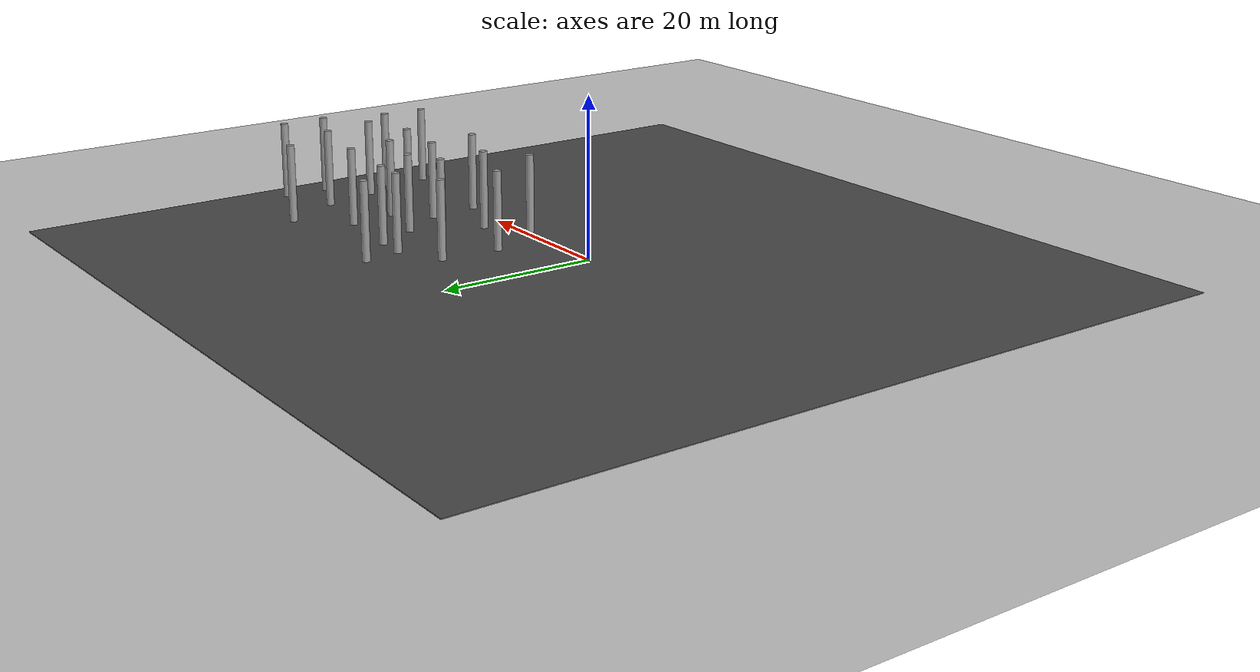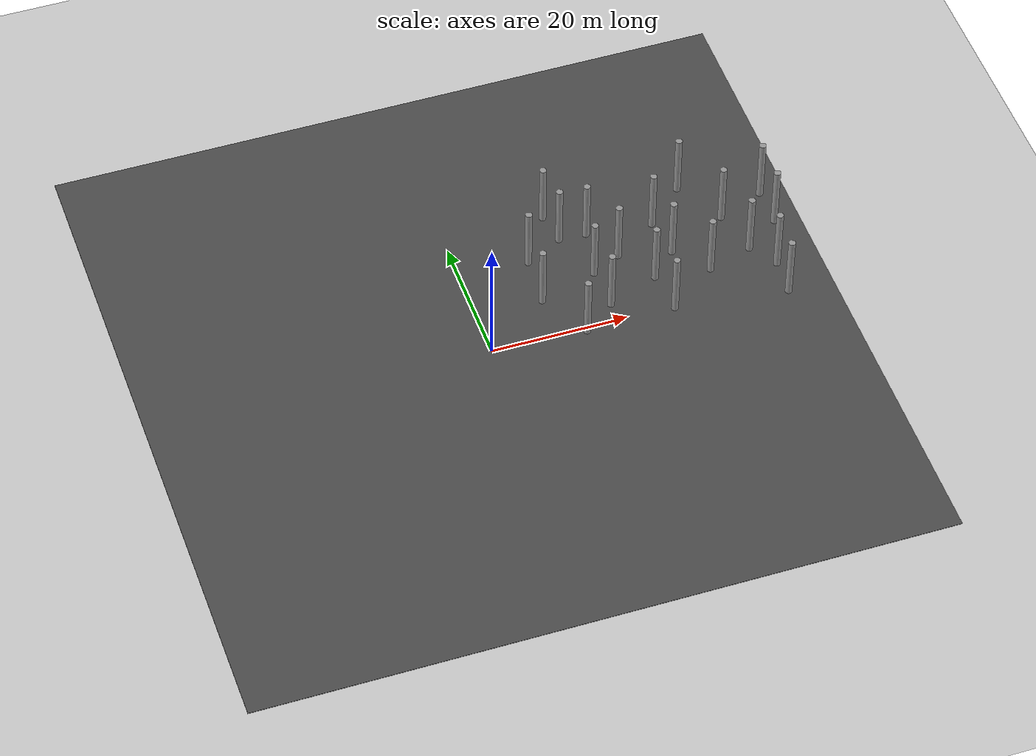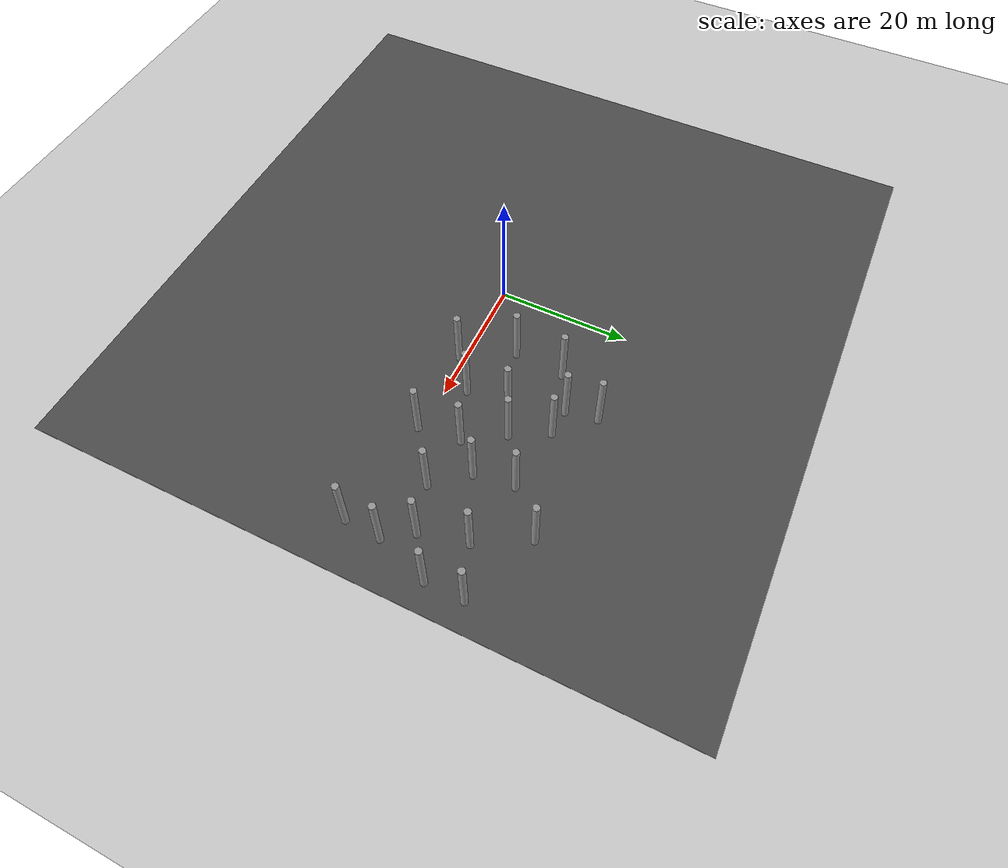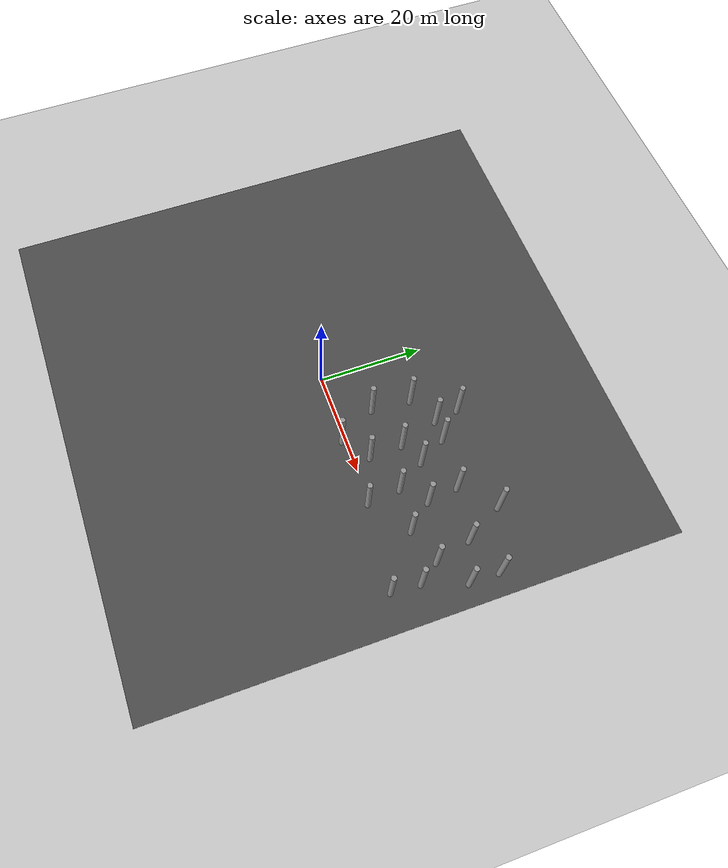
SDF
<sdf version="1.6">
 <world name="default">
  <model name="ground_plane">
   <static>1</static>
   <link name="link">
    <collision name="collision">
     <geometry><plane><normal>0 0 1</normal><size>100 100</size></plane></geometry>
     <surface><friction><ode><mu>100</mu><mu2>50</mu2></ode></friction></surface>
    </collision>
    <visual name="visual">
     <cast_shadows>0</cast_shadows>
     <geometry><plane><normal>0 0 1</normal><size>100 100</size></plane></geometry>
     <material>
      <script><uri>file://media/materials/scripts/gazebo.material</uri><name>Gazebo/Grey</name></script>
     </material>
    </visual>
   </link>
  </model>
  <model name="asphalt_plane">
   <static>1</static>
   <link name="link">
    <collision name="collision"><geometry><box><size>100 100 0.1</size></box></geometry></collision>
    <visual name="visual">
     <cast_shadows>0</cast_shadows>
     <geometry><box><size>100 100 0.1</size></box></geometry>
     <material>
      <script>
       <uri>model://asphalt_plane/materials/scripts</uri>
       <uri>model://asphalt_plane/materials/textures</uri>
       <name>vrc/asphalt</name>
      </script>
     </material>
    </visual>
   </link>
   <pose>0.078502 0.417861 0 0 -0 0</pose>
  </model>
  <model name="forest">
   <link name="link_clone_13_clone_138">
    <pose>14.2337 0.187666 -0 0 -0 0</pose>
    <inertial>
     <mass>1000</mass>
     <inertia><ixx>0.145833</ixx><ixy>0</ixy><ixz>0</ixz><iyy>0.145833</iyy><iyz>0</iyz><izz>0.125</izz></inertia>
     <pose>0 0 5 0 -0 0</pose>
    </inertial>
    <visual name="visual">
     <geometry><cylinder><radius>0.5</radius><length>10</length></cylinder></geometry>
     <material>
      <script><name>Gazebo/Grey</name><uri>file://media/materials/scripts/gazebo.material</uri></script>
      <ambient>0.3 0.3 0.3 1</ambient>
      <diffuse>0.7 0.7 0.7 1</diffuse>
      <specular>0.01 0.01 0.01 1</specular>
      <emissive>0 0 0 1</emissive>
      <shader type="vertex"><normal_map>__default__</normal_map></shader>
     </material>
     <pose>0 0 5 0 -0 0</pose>
    </visual>
    <collision name="collision">
     <pose>0 0 5 0 -0 0</pose>
     <geometry><cylinder><radius>0.5</radius><length>10</length></cylinder></geometry>
     <surface>
      <friction>
       <ode><mu>1</mu><mu2>1</mu2><fdir1>0 0 0</fdir1><slip1>0</slip1><slip2>0</slip2></ode>
       <torsional>
        <coefficient>1</coefficient>
        <patch_radius>0</patch_radius>
        <surface_radius>0</surface_radius>
        <use_patch_radius>1</use_patch_radius>
        <ode><slip>0</slip></ode>
       </torsional>
      </friction>
      <bounce><restitution_coefficient>0</restitution_coefficient><threshold>1e+06</threshold></bounce>
      <contact>
       <collide_without_contact>0</collide_without_contact>
       <collide_without_contact_bitmask>1</collide_without_contact_bitmask>
       <collide_bitmask>1</collide_bitmask>
       <ode>
        <soft_cfm>0</soft_cfm>
        <soft_erp>0.2</soft_erp>
        <kp>1e+13</kp>
        <kd>1</kd>
        <max_vel>0.01</max_vel>
        <min_depth>0</min_depth>
       </ode>
       <bullet>
        <split_impulse>1</split_impulse>
        <split_impulse_penetration_threshold>-0.01</split_impulse_penetration_threshold>
        <soft_cfm>0</soft_cfm>
        <soft_erp>0.2</soft_erp>
        <kp>1e+13</kp>
        <kd>1</kd>
       </bullet>
      </contact>
     </surface>
    </collision>
   </link>
   <link name="link_clone_13_clone_139">
    <pose>27.3838 0.411137 -0 0 -0 0</pose>
    <inertial>
     <mass>1000</mass>
     <inertia><ixx>0.145833</ixx><ixy>0</ixy><ixz>0</ixz><iyy>0.145833</iyy><iyz>0</iyz><izz>0.125</izz></inertia>
     <pose>0 0 5 0 -0 0</pose>
    </inertial>
    <visual name="visual">
     <geometry><cylinder><radius>0.5</radius><length>10</length></cylinder></geometry>
     <material>
      <script><name>Gazebo/Grey</name><uri>file://media/materials/scripts/gazebo.material</uri></script>
      <ambient>0.3 0.3 0.3 1</ambient>
      <diffuse>0.7 0.7 0.7 1</diffuse>
      <specular>0.01 0.01 0.01 1</specular>
      <emissive>0 0 0 1</emissive>
      <shader type="vertex"><normal_map>__default__</normal_map></shader>
     </material>
     <pose>0 0 5 0 -0 0</pose>
    </visual>
    <collision name="collision">
     <pose>0 0 5 0 -0 0</pose>
     <geometry><cylinder><radius>0.5</radius><length>10</length></cylinder></geometry>
     <surface>
      <friction>
       <ode><mu>1</mu><mu2>1</mu2><fdir1>0 0 0</fdir1><slip1>0</slip1><slip2>0</slip2></ode>
       <torsional>
        <coefficient>1</coefficient>
        <patch_radius>0</patch_radius>
        <surface_radius>0</surface_radius>
        <use_patch_radius>1</use_patch_radius>
        <ode><slip>0</slip></ode>
       </torsional>
      </friction>
      <bounce><restitution_coefficient>0</restitution_coefficient><threshold>1e+06</threshold></bounce>
      <contact>
       <collide_without_contact>0</collide_without_contact>
       <collide_without_contact_bitmask>1</collide_without_contact_bitmask>
       <collide_bitmask>1</collide_bitmask>
       <ode>
        <soft_cfm>0</soft_cfm>
        <soft_erp>0.2</soft_erp>
        <kp>1e+13</kp>
        <kd>1</kd>
        <max_vel>0.01</max_vel>
        <min_depth>0</min_depth>
       </ode>
       <bullet>
        <split_impulse>1</split_impulse>
        <split_impulse_penetration_threshold>-0.01</split_impulse_penetration_threshold>
        <soft_cfm>0</soft_cfm>
        <soft_erp>0.2</soft_erp>
        <kp>1e+13</kp>
        <kd>1</kd>
       </bullet>
      </contact>
     </surface>
    </collision>
   </link>
   <link name="link_clone_13_clone_140">
    <pose>19.0739 3.92236 -0 0 -0 0</pose>
    <inertial>
     <mass>1000</mass>
     <inertia><ixx>0.145833</ixx><ixy>0</ixy><ixz>0</ixz><iyy>0.145833</iyy><iyz>0</iyz><izz>0.125</izz></inertia>
     <pose>0 0 5 0 -0 0</pose>
    </inertial>
    <visual name="visual">
     <geometry><cylinder><radius>0.5</radius><length>10</length></cylinder></geometry>
     <material>
      <script><name>Gazebo/Grey</name><uri>file://media/materials/scripts/gazebo.material</uri></script>
      <ambient>0.3 0.3 0.3 1</ambient>
      <diffuse>0.7 0.7 0.7 1</diffuse>
      <specular>0.01 0.01 0.01 1</specular>
      <emissive>0 0 0 1</emissive>
      <shader type="vertex"><normal_map>__default__</normal_map></shader>
     </material>
     <pose>0 0 5 0 -0 0</pose>
    </visual>
    <collision name="collision">
     <pose>0 0 5 0 -0 0</pose>
     <geometry><cylinder><radius>0.5</radius><length>10</length></cylinder></geometry>
     <surface>
      <friction>
       <ode><mu>1</mu><mu2>1</mu2><fdir1>0 0 0</fdir1><slip1>0</slip1><slip2>0</slip2></ode>
       <torsional>
        <coefficient>1</coefficient>
        <patch_radius>0</patch_radius>
        <surface_radius>0</surface_radius>
        <use_patch_radius>1</use_patch_radius>
        <ode><slip>0</slip></ode>
       </torsional>
      </friction>
      <bounce><restitution_coefficient>0</restitution_coefficient><threshold>1e+06</threshold></bounce>
      <contact>
       <collide_without_contact>0</collide_without_contact>
       <collide_without_contact_bitmask>1</collide_without_contact_bitmask>
       <collide_bitmask>1</collide_bitmask>
       <ode>
        <soft_cfm>0</soft_cfm>
        <soft_erp>0.2</soft_erp>
        <kp>1e+13</kp>
        <kd>1</kd>
        <max_vel>0.01</max_vel>
        <min_depth>0</min_depth>
       </ode>
       <bullet>
        <split_impulse>1</split_impulse>
        <split_impulse_penetration_threshold>-0.01</split_impulse_penetration_threshold>
        <soft_cfm>0</soft_cfm>
        <soft_erp>0.2</soft_erp>
        <kp>1e+13</kp>
        <kd>1</kd>
       </bullet>
      </contact>
     </surface>
    </collision>
   </link>
   <link name="link_clone_13_clone_145">
    <pose>10.1166 7.60792 -0 0 -0 0</pose>
    <inertial>
     <mass>1000</mass>
     <inertia><ixx>0.145833</ixx><ixy>0</ixy><ixz>0</ixz><iyy>0.145833</iyy><iyz>0</iyz><izz>0.125</izz></inertia>
     <pose>0 0 5 0 -0 0</pose>
    </inertial>
    <visual name="visual">
     <geometry><cylinder><radius>0.5</radius><length>10</length></cylinder></geometry>
     <material>
      <script><name>Gazebo/Grey</name><uri>file://media/materials/scripts/gazebo.material</uri></script>
      <ambient>0.3 0.3 0.3 1</ambient>
      <diffuse>0.7 0.7 0.7 1</diffuse>
      <specular>0.01 0.01 0.01 1</specular>
      <emissive>0 0 0 1</emissive>
      <shader type="vertex"><normal_map>__default__</normal_map></shader>
     </material>
     <pose>0 0 5 0 -0 0</pose>
    </visual>
    <collision name="collision">
     <pose>0 0 5 0 -0 0</pose>
     <geometry><cylinder><radius>0.5</radius><length>10</length></cylinder></geometry>
     <surface>
      <friction>
       <ode><mu>1</mu><mu2>1</mu2><fdir1>0 0 0</fdir1><slip1>0</slip1><slip2>0</slip2></ode>
       <torsional>
        <coefficient>1</coefficient>
        <patch_radius>0</patch_radius>
        <surface_radius>0</surface_radius>
        <use_patch_radius>1</use_patch_radius>
        <ode><slip>0</slip></ode>
       </torsional>
      </friction>
      <bounce><restitution_coefficient>0</restitution_coefficient><threshold>1e+06</threshold></bounce>
      <contact>
       <collide_without_contact>0</collide_without_contact>
       <collide_without_contact_bitmask>1</collide_without_contact_bitmask>
       <collide_bitmask>1</collide_bitmask>
       <ode>
        <soft_cfm>0</soft_cfm>
        <soft_erp>0.2</soft_erp>
        <kp>1e+13</kp>
        <kd>1</kd>
        <max_vel>0.01</max_vel>
        <min_depth>0</min_depth>
       </ode>
       <bullet>
        <split_impulse>1</split_impulse>
        <split_impulse_penetration_threshold>-0.01</split_impulse_penetration_threshold>
        <soft_cfm>0</soft_cfm>
        <soft_erp>0.2</soft_erp>
        <kp>1e+13</kp>
        <kd>1</kd>
       </bullet>
      </contact>
     </surface>
    </collision>
   </link>
   <link name="link_clone_13_clone_147">
    <pose>44.101 3.91015 -0 0 -0 0</pose>
    <inertial>
     <mass>1000</mass>
     <inertia><ixx>0.145833</ixx><ixy>0</ixy><ixz>0</ixz><iyy>0.145833</iyy><iyz>0</iyz><izz>0.125</izz></inertia>
     <pose>0 0 5 0 -0 0</pose>
    </inertial>
    <visual name="visual">
     <geometry><cylinder><radius>0.5</radius><length>10</length></cylinder></geometry>
     <material>
      <script><name>Gazebo/Grey</name><uri>file://media/materials/scripts/gazebo.material</uri></script>
      <ambient>0.3 0.3 0.3 1</ambient>
      <diffuse>0.7 0.7 0.7 1</diffuse>
      <specular>0.01 0.01 0.01 1</specular>
      <emissive>0 0 0 1</emissive>
      <shader type="vertex"><normal_map>__default__</normal_map></shader>
     </material>
     <pose>0 0 5 0 -0 0</pose>
    </visual>
    <collision name="collision">
     <pose>0 0 5 0 -0 0</pose>
     <geometry><cylinder><radius>0.5</radius><length>10</length></cylinder></geometry>
     <surface>
      <friction>
       <ode><mu>1</mu><mu2>1</mu2><fdir1>0 0 0</fdir1><slip1>0</slip1><slip2>0</slip2></ode>
       <torsional>
        <coefficient>1</coefficient>
        <patch_radius>0</patch_radius>
        <surface_radius>0</surface_radius>
        <use_patch_radius>1</use_patch_radius>
        <ode><slip>0</slip></ode>
       </torsional>
      </friction>
      <bounce><restitution_coefficient>0</restitution_coefficient><threshold>1e+06</threshold></bounce>
      <contact>
       <collide_without_contact>0</collide_without_contact>
       <collide_without_contact_bitmask>1</collide_without_contact_bitmask>
       <collide_bitmask>1</collide_bitmask>
       <ode>
        <soft_cfm>0</soft_cfm>
        <soft_erp>0.2</soft_erp>
        <kp>1e+13</kp>
        <kd>1</kd>
        <max_vel>0.01</max_vel>
        <min_depth>0</min_depth>
       </ode>
       <bullet>
        <split_impulse>1</split_impulse>
        <split_impulse_penetration_threshold>-0.01</split_impulse_penetration_threshold>
        <soft_cfm>0</soft_cfm>
        <soft_erp>0.2</soft_erp>
        <kp>1e+13</kp>
        <kd>1</kd>
       </bullet>
      </contact>
     </surface>
    </collision>
   </link>
   <link name="link_clone_13_clone_148">
    <pose>43.7394 -1.57033 -0 0 -0 0</pose>
    <inertial>
     <mass>1000</mass>
     <inertia><ixx>0.145833</ixx><ixy>0</ixy><ixz>0</ixz><iyy>0.145833</iyy><iyz>0</iyz><izz>0.125</izz></inertia>
     <pose>0 0 5 0 -0 0</pose>
    </inertial>
    <visual name="visual">
     <geometry><cylinder><radius>0.5</radius><length>10</length></cylinder></geometry>
     <material>
      <script><name>Gazebo/Grey</name><uri>file://media/materials/scripts/gazebo.material</uri></script>
      <ambient>0.3 0.3 0.3 1</ambient>
      <diffuse>0.7 0.7 0.7 1</diffuse>
      <specular>0.01 0.01 0.01 1</specular>
      <emissive>0 0 0 1</emissive>
      <shader type="vertex"><normal_map>__default__</normal_map></shader>
     </material>
     <pose>0 0 5 0 -0 0</pose>
    </visual>
    <collision name="collision">
     <pose>0 0 5 0 -0 0</pose>
     <geometry><cylinder><radius>0.5</radius><length>10</length></cylinder></geometry>
     <surface>
      <friction>
       <ode><mu>1</mu><mu2>1</mu2><fdir1>0 0 0</fdir1><slip1>0</slip1><slip2>0</slip2></ode>
       <torsional>
        <coefficient>1</coefficient>
        <patch_radius>0</patch_radius>
        <surface_radius>0</surface_radius>
        <use_patch_radius>1</use_patch_radius>
        <ode><slip>0</slip></ode>
       </torsional>
      </friction>
      <bounce><restitution_coefficient>0</restitution_coefficient><threshold>1e+06</threshold></bounce>
      <contact>
       <collide_without_contact>0</collide_without_contact>
       <collide_without_contact_bitmask>1</collide_without_contact_bitmask>
       <collide_bitmask>1</collide_bitmask>
       <ode>
        <soft_cfm>0</soft_cfm>
        <soft_erp>0.2</soft_erp>
        <kp>1e+13</kp>
        <kd>1</kd>
        <max_vel>0.01</max_vel>
        <min_depth>0</min_depth>
       </ode>
       <bullet>
        <split_impulse>1</split_impulse>
        <split_impulse_penetration_threshold>-0.01</split_impulse_penetration_threshold>
        <soft_cfm>0</soft_cfm>
        <soft_erp>0.2</soft_erp>
        <kp>1e+13</kp>
        <kd>1</kd>
       </bullet>
      </contact>
     </surface>
    </collision>
   </link>
   <link name="link_clone_13_clone_149">
    <pose>34.7239 5.80433 -0 0 -0 0</pose>
    <inertial>
     <mass>1000</mass>
     <inertia><ixx>0.145833</ixx><ixy>0</ixy><ixz>0</ixz><iyy>0.145833</iyy><iyz>0</iyz><izz>0.125</izz></inertia>
     <pose>0 0 5 0 -0 0</pose>
    </inertial>
    <visual name="visual">
     <geometry><cylinder><radius>0.5</radius><length>10</length></cylinder></geometry>
     <material>
      <script><name>Gazebo/Grey</name><uri>file://media/materials/scripts/gazebo.material</uri></script>
      <ambient>0.3 0.3 0.3 1</ambient>
      <diffuse>0.7 0.7 0.7 1</diffuse>
      <specular>0.01 0.01 0.01 1</specular>
      <emissive>0 0 0 1</emissive>
      <shader type="vertex"><normal_map>__default__</normal_map></shader>
     </material>
     <pose>0 0 5 0 -0 0</pose>
    </visual>
    <collision name="collision">
     <pose>0 0 5 0 -0 0</pose>
     <geometry><cylinder><radius>0.5</radius><length>10</length></cylinder></geometry>
     <surface>
      <friction>
       <ode><mu>1</mu><mu2>1</mu2><fdir1>0 0 0</fdir1><slip1>0</slip1><slip2>0</slip2></ode>
       <torsional>
        <coefficient>1</coefficient>
        <patch_radius>0</patch_radius>
        <surface_radius>0</surface_radius>
        <use_patch_radius>1</use_patch_radius>
        <ode><slip>0</slip></ode>
       </torsional>
      </friction>
      <bounce><restitution_coefficient>0</restitution_coefficient><threshold>1e+06</threshold></bounce>
      <contact>
       <collide_without_contact>0</collide_without_contact>
       <collide_without_contact_bitmask>1</collide_without_contact_bitmask>
       <collide_bitmask>1</collide_bitmask>
       <ode>
        <soft_cfm>0</soft_cfm>
        <soft_erp>0.2</soft_erp>
        <kp>1e+13</kp>
        <kd>1</kd>
        <max_vel>0.01</max_vel>
        <min_depth>0</min_depth>
       </ode>
       <bullet>
        <split_impulse>1</split_impulse>
        <split_impulse_penetration_threshold>-0.01</split_impulse_penetration_threshold>
        <soft_cfm>0</soft_cfm>
        <soft_erp>0.2</soft_erp>
        <kp>1e+13</kp>
        <kd>1</kd>
       </bullet>
      </contact>
     </surface>
    </collision>
   </link>
   <link name="link_clone_13_clone_150">
    <pose>26.7239 6.80433 -0 0 -0 0</pose>
    <inertial>
     <mass>1000</mass>
     <inertia><ixx>0.145833</ixx><ixy>0</ixy><ixz>0</ixz><iyy>0.145833</iyy><iyz>0</iyz><izz>0.125</izz></inertia>
     <pose>0 0 5 0 -0 0</pose>
    </inertial>
    <visual name="visual">
     <geometry><cylinder><radius>0.5</radius><length>10</length></cylinder></geometry>
     <material>
      <script><name>Gazebo/Grey</name><uri>file://media/materials/scripts/gazebo.material</uri></script>
      <ambient>0.3 0.3 0.3 1</ambient>
      <diffuse>0.7 0.7 0.7 1</diffuse>
      <specular>0.01 0.01 0.01 1</specular>
      <emissive>0 0 0 1</emissive>
      <shader type="vertex"><normal_map>__default__</normal_map></shader>
     </material>
     <pose>0 0 5 0 -0 0</pose>
    </visual>
    <collision name="collision">
     <pose>0 0 5 0 -0 0</pose>
     <geometry><cylinder><radius>0.5</radius><length>10</length></cylinder></geometry>
     <surface>
      <friction>
       <ode><mu>1</mu><mu2>1</mu2><fdir1>0 0 0</fdir1><slip1>0</slip1><slip2>0</slip2></ode>
       <torsional>
        <coefficient>1</coefficient>
        <patch_radius>0</patch_radius>
        <surface_radius>0</surface_radius>
        <use_patch_radius>1</use_patch_radius>
        <ode><slip>0</slip></ode>
       </torsional>
      </friction>
      <bounce><restitution_coefficient>0</restitution_coefficient><threshold>1e+06</threshold></bounce>
      <contact>
       <collide_without_contact>0</collide_without_contact>
       <collide_without_contact_bitmask>1</collide_without_contact_bitmask>
       <collide_bitmask>1</collide_bitmask>
       <ode>
        <soft_cfm>0</soft_cfm>
        <soft_erp>0.2</soft_erp>
        <kp>1e+13</kp>
        <kd>1</kd>
        <max_vel>0.01</max_vel>
        <min_depth>0</min_depth>
       </ode>
       <bullet>
        <split_impulse>1</split_impulse>
        <split_impulse_penetration_threshold>-0.01</split_impulse_penetration_threshold>
        <soft_cfm>0</soft_cfm>
        <soft_erp>0.2</soft_erp>
        <kp>1e+13</kp>
        <kd>1</kd>
       </bullet>
      </contact>
     </surface>
    </collision>
   </link>
   <link name="link_clone_13_clone_151">
    <pose>18.7798 10.291 -0 0 -0 0</pose>
    <inertial>
     <mass>1000</mass>
     <inertia><ixx>0.145833</ixx><ixy>0</ixy><ixz>0</ixz><iyy>0.145833</iyy><iyz>0</iyz><izz>0.125</izz></inertia>
     <pose>0 0 5 0 -0 0</pose>
    </inertial>
    <visual name="visual">
     <geometry><cylinder><radius>0.5</radius><length>10</length></cylinder></geometry>
     <material>
      <script><name>Gazebo/Grey</name><uri>file://media/materials/scripts/gazebo.material</uri></script>
      <ambient>0.3 0.3 0.3 1</ambient>
      <diffuse>0.7 0.7 0.7 1</diffuse>
      <specular>0.01 0.01 0.01 1</specular>
      <emissive>0 0 0 1</emissive>
      <shader type="vertex"><normal_map>__default__</normal_map></shader>
     </material>
     <pose>0 0 5 0 -0 0</pose>
    </visual>
    <collision name="collision">
     <pose>0 0 5 0 -0 0</pose>
     <geometry><cylinder><radius>0.5</radius><length>10</length></cylinder></geometry>
     <surface>
      <friction>
       <ode><mu>1</mu><mu2>1</mu2><fdir1>0 0 0</fdir1><slip1>0</slip1><slip2>0</slip2></ode>
       <torsional>
        <coefficient>1</coefficient>
        <patch_radius>0</patch_radius>
        <surface_radius>0</surface_radius>
        <use_patch_radius>1</use_patch_radius>
        <ode><slip>0</slip></ode>
       </torsional>
      </friction>
      <bounce><restitution_coefficient>0</restitution_coefficient><threshold>1e+06</threshold></bounce>
      <contact>
       <collide_without_contact>0</collide_without_contact>
       <collide_without_contact_bitmask>1</collide_without_contact_bitmask>
       <collide_bitmask>1</collide_bitmask>
       <ode>
        <soft_cfm>0</soft_cfm>
        <soft_erp>0.2</soft_erp>
        <kp>1e+13</kp>
        <kd>1</kd>
        <max_vel>0.01</max_vel>
        <min_depth>0</min_depth>
       </ode>
       <bullet>
        <split_impulse>1</split_impulse>
        <split_impulse_penetration_threshold>-0.01</split_impulse_penetration_threshold>
        <soft_cfm>0</soft_cfm>
        <soft_erp>0.2</soft_erp>
        <kp>1e+13</kp>
        <kd>1</kd>
       </bullet>
      </contact>
     </surface>
    </collision>
   </link>
   <link name="link_clone_13_clone_152">
    <pose>10.6139 15.1936 -0 0 -0 0</pose>
    <inertial>
     <mass>1000</mass>
     <inertia><ixx>0.145833</ixx><ixy>0</ixy><ixz>0</ixz><iyy>0.145833</iyy><iyz>0</iyz><izz>0.125</izz></inertia>
     <pose>0 0 5 0 -0 0</pose>
    </inertial>
    <visual name="visual">
     <geometry><cylinder><radius>0.5</radius><length>10</length></cylinder></geometry>
     <material>
      <script><name>Gazebo/Grey</name><uri>file://media/materials/scripts/gazebo.material</uri></script>
      <ambient>0.3 0.3 0.3 1</ambient>
      <diffuse>0.7 0.7 0.7 1</diffuse>
      <specular>0.01 0.01 0.01 1</specular>
      <emissive>0 0 0 1</emissive>
      <shader type="vertex"><normal_map>__default__</normal_map></shader>
     </material>
     <pose>0 0 5 0 -0 0</pose>
    </visual>
    <collision name="collision">
     <pose>0 0 5 0 -0 0</pose>
     <geometry><cylinder><radius>0.5</radius><length>10</length></cylinder></geometry>
     <surface>
      <friction>
       <ode><mu>1</mu><mu2>1</mu2><fdir1>0 0 0</fdir1><slip1>0</slip1><slip2>0</slip2></ode>
       <torsional>
        <coefficient>1</coefficient>
        <patch_radius>0</patch_radius>
        <surface_radius>0</surface_radius>
        <use_patch_radius>1</use_patch_radius>
        <ode><slip>0</slip></ode>
       </torsional>
      </friction>
      <bounce><restitution_coefficient>0</restitution_coefficient><threshold>1e+06</threshold></bounce>
      <contact>
       <collide_without_contact>0</collide_without_contact>
       <collide_without_contact_bitmask>1</collide_without_contact_bitmask>
       <collide_bitmask>1</collide_bitmask>
       <ode>
        <soft_cfm>0</soft_cfm>
        <soft_erp>0.2</soft_erp>
        <kp>1e+13</kp>
        <kd>1</kd>
        <max_vel>0.01</max_vel>
        <min_depth>0</min_depth>
       </ode>
       <bullet>
        <split_impulse>1</split_impulse>
        <split_impulse_penetration_threshold>-0.01</split_impulse_penetration_threshold>
        <soft_cfm>0</soft_cfm>
        <soft_erp>0.2</soft_erp>
        <kp>1e+13</kp>
        <kd>1</kd>
       </bullet>
      </contact>
     </surface>
    </collision>
   </link>
   <link name="link_clone_13_clone_167">
    <pose>46.7067 17.5333 -0 0 -0 0</pose>
    <inertial>
     <mass>1000</mass>
     <inertia><ixx>0.145833</ixx><ixy>0</ixy><ixz>0</ixz><iyy>0.145833</iyy><iyz>0</iyz><izz>0.125</izz></inertia>
     <pose>0 0 5 0 -0 0</pose>
    </inertial>
    <visual name="visual">
     <geometry><cylinder><radius>0.5</radius><length>10</length></cylinder></geometry>
     <material>
      <script><name>Gazebo/Grey</name><uri>file://media/materials/scripts/gazebo.material</uri></script>
      <ambient>0.3 0.3 0.3 1</ambient>
      <diffuse>0.7 0.7 0.7 1</diffuse>
      <specular>0.01 0.01 0.01 1</specular>
      <emissive>0 0 0 1</emissive>
      <shader type="vertex"><normal_map>__default__</normal_map></shader>
     </material>
     <pose>0 0 5 0 -0 0</pose>
    </visual>
    <collision name="collision">
     <pose>0 0 5 0 -0 0</pose>
     <geometry><cylinder><radius>0.5</radius><length>10</length></cylinder></geometry>
     <surface>
      <friction>
       <ode><mu>1</mu><mu2>1</mu2><fdir1>0 0 0</fdir1><slip1>0</slip1><slip2>0</slip2></ode>
       <torsional>
        <coefficient>1</coefficient>
        <patch_radius>0</patch_radius>
        <surface_radius>0</surface_radius>
        <use_patch_radius>1</use_patch_radius>
        <ode><slip>0</slip></ode>
       </torsional>
      </friction>
      <bounce><restitution_coefficient>0</restitution_coefficient><threshold>1e+06</threshold></bounce>
      <contact>
       <collide_without_contact>0</collide_without_contact>
       <collide_without_contact_bitmask>1</collide_without_contact_bitmask>
       <collide_bitmask>1</collide_bitmask>
       <ode>
        <soft_cfm>0</soft_cfm>
        <soft_erp>0.2</soft_erp>
        <kp>1e+13</kp>
        <kd>1</kd>
        <max_vel>0.01</max_vel>
        <min_depth>0</min_depth>
       </ode>
       <bullet>
        <split_impulse>1</split_impulse>
        <split_impulse_penetration_threshold>-0.01</split_impulse_penetration_threshold>
        <soft_cfm>0</soft_cfm>
        <soft_erp>0.2</soft_erp>
        <kp>1e+13</kp>
        <kd>1</kd>
       </bullet>
      </contact>
     </surface>
    </collision>
   </link>
   <link name="link_clone_13_clone_168">
    <pose>46.7239 11.8043 -0 0 -0 0</pose>
    <inertial>
     <mass>1000</mass>
     <inertia><ixx>0.145833</ixx><ixy>0</ixy><ixz>0</ixz><iyy>0.145833</iyy><iyz>0</iyz><izz>0.125</izz></inertia>
     <pose>0 0 5 0 -0 0</pose>
    </inertial>
    <visual name="visual">
     <geometry><cylinder><radius>0.5</radius><length>10</length></cylinder></geometry>
     <material>
      <script><name>Gazebo/Grey</name><uri>file://media/materials/scripts/gazebo.material</uri></script>
      <ambient>0.3 0.3 0.3 1</ambient>
      <diffuse>0.7 0.7 0.7 1</diffuse>
      <specular>0.01 0.01 0.01 1</specular>
      <emissive>0 0 0 1</emissive>
      <shader type="vertex"><normal_map>__default__</normal_map></shader>
     </material>
     <pose>0 0 5 0 -0 0</pose>
    </visual>
    <collision name="collision">
     <pose>0 0 5 0 -0 0</pose>
     <geometry><cylinder><radius>0.5</radius><length>10</length></cylinder></geometry>
     <surface>
      <friction>
       <ode><mu>1</mu><mu2>1</mu2><fdir1>0 0 0</fdir1><slip1>0</slip1><slip2>0</slip2></ode>
       <torsional>
        <coefficient>1</coefficient>
        <patch_radius>0</patch_radius>
        <surface_radius>0</surface_radius>
        <use_patch_radius>1</use_patch_radius>
        <ode><slip>0</slip></ode>
       </torsional>
      </friction>
      <bounce><restitution_coefficient>0</restitution_coefficient><threshold>1e+06</threshold></bounce>
      <contact>
       <collide_without_contact>0</collide_without_contact>
       <collide_without_contact_bitmask>1</collide_without_contact_bitmask>
       <collide_bitmask>1</collide_bitmask>
       <ode>
        <soft_cfm>0</soft_cfm>
        <soft_erp>0.2</soft_erp>
        <kp>1e+13</kp>
        <kd>1</kd>
        <max_vel>0.01</max_vel>
        <min_depth>0</min_depth>
       </ode>
       <bullet>
        <split_impulse>1</split_impulse>
        <split_impulse_penetration_threshold>-0.01</split_impulse_penetration_threshold>
        <soft_cfm>0</soft_cfm>
        <soft_erp>0.2</soft_erp>
        <kp>1e+13</kp>
        <kd>1</kd>
       </bullet>
      </contact>
     </surface>
    </collision>
   </link>
   <link name="link_clone_13_clone_169">
    <pose>41.3953 7.87099 -0 0 -0 0</pose>
    <inertial>
     <mass>1000</mass>
     <inertia><ixx>0.145833</ixx><ixy>0</ixy><ixz>0</ixz><iyy>0.145833</iyy><iyz>0</iyz><izz>0.125</izz></inertia>
     <pose>0 0 5 0 -0 0</pose>
    </inertial>
    <visual name="visual">
     <geometry><cylinder><radius>0.5</radius><length>10</length></cylinder></geometry>
     <material>
      <script><name>Gazebo/Grey</name><uri>file://media/materials/scripts/gazebo.material</uri></script>
      <ambient>0.3 0.3 0.3 1</ambient>
      <diffuse>0.7 0.7 0.7 1</diffuse>
      <specular>0.01 0.01 0.01 1</specular>
      <emissive>0 0 0 1</emissive>
      <shader type="vertex"><normal_map>__default__</normal_map></shader>
     </material>
     <pose>0 0 5 0 -0 0</pose>
    </visual>
    <collision name="collision">
     <pose>0 0 5 0 -0 0</pose>
     <geometry><cylinder><radius>0.5</radius><length>10</length></cylinder></geometry>
     <surface>
      <friction>
       <ode><mu>1</mu><mu2>1</mu2><fdir1>0 0 0</fdir1><slip1>0</slip1><slip2>0</slip2></ode>
       <torsional>
        <coefficient>1</coefficient>
        <patch_radius>0</patch_radius>
        <surface_radius>0</surface_radius>
        <use_patch_radius>1</use_patch_radius>
        <ode><slip>0</slip></ode>
       </torsional>
      </friction>
      <bounce><restitution_coefficient>0</restitution_coefficient><threshold>1e+06</threshold></bounce>
      <contact>
       <collide_without_contact>0</collide_without_contact>
       <collide_without_contact_bitmask>1</collide_without_contact_bitmask>
       <collide_bitmask>1</collide_bitmask>
       <ode>
        <soft_cfm>0</soft_cfm>
        <soft_erp>0.2</soft_erp>
        <kp>1e+13</kp>
        <kd>1</kd>
        <max_vel>0.01</max_vel>
        <min_depth>0</min_depth>
       </ode>
       <bullet>
        <split_impulse>1</split_impulse>
        <split_impulse_penetration_threshold>-0.01</split_impulse_penetration_threshold>
        <soft_cfm>0</soft_cfm>
        <soft_erp>0.2</soft_erp>
        <kp>1e+13</kp>
        <kd>1</kd>
       </bullet>
      </contact>
     </surface>
    </collision>
   </link>
   <link name="link_clone_13_clone_170">
    <pose>39.7239 14.8043 -0 0 -0 0</pose>
    <inertial>
     <mass>1000</mass>
     <inertia><ixx>0.145833</ixx><ixy>0</ixy><ixz>0</ixz><iyy>0.145833</iyy><iyz>0</iyz><izz>0.125</izz></inertia>
     <pose>0 0 5 0 -0 0</pose>
    </inertial>
    <visual name="visual">
     <geometry><cylinder><radius>0.5</radius><length>10</length></cylinder></geometry>
     <material>
      <script><name>Gazebo/Grey</name><uri>file://media/materials/scripts/gazebo.material</uri></script>
      <ambient>0.3 0.3 0.3 1</ambient>
      <diffuse>0.7 0.7 0.7 1</diffuse>
      <specular>0.01 0.01 0.01 1</specular>
      <emissive>0 0 0 1</emissive>
      <shader type="vertex"><normal_map>__default__</normal_map></shader>
     </material>
     <pose>0 0 5 0 -0 0</pose>
    </visual>
    <collision name="collision">
     <pose>0 0 5 0 -0 0</pose>
     <geometry><cylinder><radius>0.5</radius><length>10</length></cylinder></geometry>
     <surface>
      <friction>
       <ode><mu>1</mu><mu2>1</mu2><fdir1>0 0 0</fdir1><slip1>0</slip1><slip2>0</slip2></ode>
       <torsional>
        <coefficient>1</coefficient>
        <patch_radius>0</patch_radius>
        <surface_radius>0</surface_radius>
        <use_patch_radius>1</use_patch_radius>
        <ode><slip>0</slip></ode>
       </torsional>
      </friction>
      <bounce><restitution_coefficient>0</restitution_coefficient><threshold>1e+06</threshold></bounce>
      <contact>
       <collide_without_contact>0</collide_without_contact>
       <collide_without_contact_bitmask>1</collide_without_contact_bitmask>
       <collide_bitmask>1</collide_bitmask>
       <ode>
        <soft_cfm>0</soft_cfm>
        <soft_erp>0.2</soft_erp>
        <kp>1e+13</kp>
        <kd>1</kd>
        <max_vel>0.01</max_vel>
        <min_depth>0</min_depth>
       </ode>
       <bullet>
        <split_impulse>1</split_impulse>
        <split_impulse_penetration_threshold>-0.01</split_impulse_penetration_threshold>
        <soft_cfm>0</soft_cfm>
        <soft_erp>0.2</soft_erp>
        <kp>1e+13</kp>
        <kd>1</kd>
       </bullet>
      </contact>
     </surface>
    </collision>
   </link>
   <link name="link_clone_13_clone_171">
    <pose>30.6795 10.6945 -0 0 -0 0</pose>
    <inertial>
     <mass>1000</mass>
     <inertia><ixx>0.145833</ixx><ixy>0</ixy><ixz>0</ixz><iyy>0.145833</iyy><iyz>0</iyz><izz>0.125</izz></inertia>
     <pose>0 0 5 0 -0 0</pose>
    </inertial>
    <visual name="visual">
     <geometry><cylinder><radius>0.5</radius><length>10</length></cylinder></geometry>
     <material>
      <script><name>Gazebo/Grey</name><uri>file://media/materials/scripts/gazebo.material</uri></script>
      <ambient>0.3 0.3 0.3 1</ambient>
      <diffuse>0.7 0.7 0.7 1</diffuse>
      <specular>0.01 0.01 0.01 1</specular>
      <emissive>0 0 0 1</emissive>
      <shader type="vertex"><normal_map>__default__</normal_map></shader>
     </material>
     <pose>0 0 5 0 -0 0</pose>
    </visual>
    <collision name="collision">
     <pose>0 0 5 0 -0 0</pose>
     <geometry><cylinder><radius>0.5</radius><length>10</length></cylinder></geometry>
     <surface>
      <friction>
       <ode><mu>1</mu><mu2>1</mu2><fdir1>0 0 0</fdir1><slip1>0</slip1><slip2>0</slip2></ode>
       <torsional>
        <coefficient>1</coefficient>
        <patch_radius>0</patch_radius>
        <surface_radius>0</surface_radius>
        <use_patch_radius>1</use_patch_radius>
        <ode><slip>0</slip></ode>
       </torsional>
      </friction>
      <bounce><restitution_coefficient>0</restitution_coefficient><threshold>1e+06</threshold></bounce>
      <contact>
       <collide_without_contact>0</collide_without_contact>
       <collide_without_contact_bitmask>1</collide_without_contact_bitmask>
       <collide_bitmask>1</collide_bitmask>
       <ode>
        <soft_cfm>0</soft_cfm>
        <soft_erp>0.2</soft_erp>
        <kp>1e+13</kp>
        <kd>1</kd>
        <max_vel>0.01</max_vel>
        <min_depth>0</min_depth>
       </ode>
       <bullet>
        <split_impulse>1</split_impulse>
        <split_impulse_penetration_threshold>-0.01</split_impulse_penetration_threshold>
        <soft_cfm>0</soft_cfm>
        <soft_erp>0.2</soft_erp>
        <kp>1e+13</kp>
        <kd>1</kd>
       </bullet>
      </contact>
     </surface>
    </collision>
   </link>
   <link name="link_clone_13_clone_172">
    <pose>23.1358 12.3948 -0 0 -0 0</pose>
    <inertial>
     <mass>1000</mass>
     <inertia><ixx>0.145833</ixx><ixy>0</ixy><ixz>0</ixz><iyy>0.145833</iyy><iyz>0</iyz><izz>0.125</izz></inertia>
     <pose>0 0 5 0 -0 0</pose>
    </inertial>
    <visual name="visual">
     <geometry><cylinder><radius>0.5</radius><length>10</length></cylinder></geometry>
     <material>
      <script><name>Gazebo/Grey</name><uri>file://media/materials/scripts/gazebo.material</uri></script>
      <ambient>0.3 0.3 0.3 1</ambient>
      <diffuse>0.7 0.7 0.7 1</diffuse>
      <specular>0.01 0.01 0.01 1</specular>
      <emissive>0 0 0 1</emissive>
      <shader type="vertex"><normal_map>__default__</normal_map></shader>
     </material>
     <pose>0 0 5 0 -0 0</pose>
    </visual>
    <collision name="collision">
     <pose>0 0 5 0 -0 0</pose>
     <geometry><cylinder><radius>0.5</radius><length>10</length></cylinder></geometry>
     <surface>
      <friction>
       <ode><mu>1</mu><mu2>1</mu2><fdir1>0 0 0</fdir1><slip1>0</slip1><slip2>0</slip2></ode>
       <torsional>
        <coefficient>1</coefficient>
        <patch_radius>0</patch_radius>
        <surface_radius>0</surface_radius>
        <use_patch_radius>1</use_patch_radius>
        <ode><slip>0</slip></ode>
       </torsional>
      </friction>
      <bounce><restitution_coefficient>0</restitution_coefficient><threshold>1e+06</threshold></bounce>
      <contact>
       <collide_without_contact>0</collide_without_contact>
       <collide_without_contact_bitmask>1</collide_without_contact_bitmask>
       <collide_bitmask>1</collide_bitmask>
       <ode>
        <soft_cfm>0</soft_cfm>
        <soft_erp>0.2</soft_erp>
        <kp>1e+13</kp>
        <kd>1</kd>
        <max_vel>0.01</max_vel>
        <min_depth>0</min_depth>
       </ode>
       <bullet>
        <split_impulse>1</split_impulse>
        <split_impulse_penetration_threshold>-0.01</split_impulse_penetration_threshold>
        <soft_cfm>0</soft_cfm>
        <soft_erp>0.2</soft_erp>
        <kp>1e+13</kp>
        <kd>1</kd>
       </bullet>
      </contact>
     </surface>
    </collision>
   </link>
   <link name="link_clone_13_clone_173">
    <pose>16.1935 18.0559 -0 0 -0 0</pose>
    <inertial>
     <mass>1000</mass>
     <inertia><ixx>0.145833</ixx><ixy>0</ixy><ixz>0</ixz><iyy>0.145833</iyy><iyz>0</iyz><izz>0.125</izz></inertia>
     <pose>0 0 5 0 -0 0</pose>
    </inertial>
    <visual name="visual">
     <geometry><cylinder><radius>0.5</radius><length>10</length></cylinder></geometry>
     <material>
      <script><name>Gazebo/Grey</name><uri>file://media/materials/scripts/gazebo.material</uri></script>
      <ambient>0.3 0.3 0.3 1</ambient>
      <diffuse>0.7 0.7 0.7 1</diffuse>
      <specular>0.01 0.01 0.01 1</specular>
      <emissive>0 0 0 1</emissive>
      <shader type="vertex"><normal_map>__default__</normal_map></shader>
     </material>
     <pose>0 0 5 0 -0 0</pose>
    </visual>
    <collision name="collision">
     <pose>0 0 5 0 -0 0</pose>
     <geometry><cylinder><radius>0.5</radius><length>10</length></cylinder></geometry>
     <surface>
      <friction>
       <ode><mu>1</mu><mu2>1</mu2><fdir1>0 0 0</fdir1><slip1>0</slip1><slip2>0</slip2></ode>
       <torsional>
        <coefficient>1</coefficient>
        <patch_radius>0</patch_radius>
        <surface_radius>0</surface_radius>
        <use_patch_radius>1</use_patch_radius>
        <ode><slip>0</slip></ode>
       </torsional>
      </friction>
      <bounce><restitution_coefficient>0</restitution_coefficient><threshold>1e+06</threshold></bounce>
      <contact>
       <collide_without_contact>0</collide_without_contact>
       <collide_without_contact_bitmask>1</collide_without_contact_bitmask>
       <collide_bitmask>1</collide_bitmask>
       <ode>
        <soft_cfm>0</soft_cfm>
        <soft_erp>0.2</soft_erp>
        <kp>1e+13</kp>
        <kd>1</kd>
        <max_vel>0.01</max_vel>
        <min_depth>0</min_depth>
       </ode>
       <bullet>
        <split_impulse>1</split_impulse>
        <split_impulse_penetration_threshold>-0.01</split_impulse_penetration_threshold>
        <soft_cfm>0</soft_cfm>
        <soft_erp>0.2</soft_erp>
        <kp>1e+13</kp>
        <kd>1</kd>
       </bullet>
      </contact>
     </surface>
    </collision>
   </link>
   <link name="link_clone_13_clone_186">
    <pose>35.6712 22.1632 -0 0 -0 0</pose>
    <inertial>
     <mass>1000</mass>
     <inertia><ixx>0.145833</ixx><ixy>0</ixy><ixz>0</ixz><iyy>0.145833</iyy><iyz>0</iyz><izz>0.125</izz></inertia>
     <pose>0 0 5 0 -0 0</pose>
    </inertial>
    <visual name="visual">
     <geometry><cylinder><radius>0.5</radius><length>10</length></cylinder></geometry>
     <material>
      <script><name>Gazebo/Grey</name><uri>file://media/materials/scripts/gazebo.material</uri></script>
      <ambient>0.3 0.3 0.3 1</ambient>
      <diffuse>0.7 0.7 0.7 1</diffuse>
      <specular>0.01 0.01 0.01 1</specular>
      <emissive>0 0 0 1</emissive>
      <shader type="vertex"><normal_map>__default__</normal_map></shader>
     </material>
     <pose>0 0 5 0 -0 0</pose>
    </visual>
    <collision name="collision">
     <pose>0 0 5 0 -0 0</pose>
     <geometry><cylinder><radius>0.5</radius><length>10</length></cylinder></geometry>
     <surface>
      <friction>
       <ode><mu>1</mu><mu2>1</mu2><fdir1>0 0 0</fdir1><slip1>0</slip1><slip2>0</slip2></ode>
       <torsional>
        <coefficient>1</coefficient>
        <patch_radius>0</patch_radius>
        <surface_radius>0</surface_radius>
        <use_patch_radius>1</use_patch_radius>
        <ode><slip>0</slip></ode>
       </torsional>
      </friction>
      <bounce><restitution_coefficient>0</restitution_coefficient><threshold>1e+06</threshold></bounce>
      <contact>
       <collide_without_contact>0</collide_without_contact>
       <collide_without_contact_bitmask>1</collide_without_contact_bitmask>
       <collide_bitmask>1</collide_bitmask>
       <ode>
        <soft_cfm>0</soft_cfm>
        <soft_erp>0.2</soft_erp>
        <kp>1e+13</kp>
        <kd>1</kd>
        <max_vel>0.01</max_vel>
        <min_depth>0</min_depth>
       </ode>
       <bullet>
        <split_impulse>1</split_impulse>
        <split_impulse_penetration_threshold>-0.01</split_impulse_penetration_threshold>
        <soft_cfm>0</soft_cfm>
        <soft_erp>0.2</soft_erp>
        <kp>1e+13</kp>
        <kd>1</kd>
       </bullet>
      </contact>
     </surface>
    </collision>
   </link>
   <link name="link_clone_13_clone_187">
    <pose>29.836 16.6792 -0 0 -0 0</pose>
    <inertial>
     <mass>1000</mass>
     <inertia><ixx>0.145833</ixx><ixy>0</ixy><ixz>0</ixz><iyy>0.145833</iyy><iyz>0</iyz><izz>0.125</izz></inertia>
     <pose>0 0 5 0 -0 0</pose>
    </inertial>
    <visual name="visual">
     <geometry><cylinder><radius>0.5</radius><length>10</length></cylinder></geometry>
     <material>
      <script><name>Gazebo/Grey</name><uri>file://media/materials/scripts/gazebo.material</uri></script>
      <ambient>0.3 0.3 0.3 1</ambient>
      <diffuse>0.7 0.7 0.7 1</diffuse>
      <specular>0.01 0.01 0.01 1</specular>
      <emissive>0 0 0 1</emissive>
      <shader type="vertex"><normal_map>__default__</normal_map></shader>
     </material>
     <pose>0 0 5 0 -0 0</pose>
    </visual>
    <collision name="collision">
     <pose>0 0 5 0 -0 0</pose>
     <geometry><cylinder><radius>0.5</radius><length>10</length></cylinder></geometry>
     <surface>
      <friction>
       <ode><mu>1</mu><mu2>1</mu2><fdir1>0 0 0</fdir1><slip1>0</slip1><slip2>0</slip2></ode>
       <torsional>
        <coefficient>1</coefficient>
        <patch_radius>0</patch_radius>
        <surface_radius>0</surface_radius>
        <use_patch_radius>1</use_patch_radius>
        <ode><slip>0</slip></ode>
       </torsional>
      </friction>
      <bounce><restitution_coefficient>0</restitution_coefficient><threshold>1e+06</threshold></bounce>
      <contact>
       <collide_without_contact>0</collide_without_contact>
       <collide_without_contact_bitmask>1</collide_without_contact_bitmask>
       <collide_bitmask>1</collide_bitmask>
       <ode>
        <soft_cfm>0</soft_cfm>
        <soft_erp>0.2</soft_erp>
        <kp>1e+13</kp>
        <kd>1</kd>
        <max_vel>0.01</max_vel>
        <min_depth>0</min_depth>
       </ode>
       <bullet>
        <split_impulse>1</split_impulse>
        <split_impulse_penetration_threshold>-0.01</split_impulse_penetration_threshold>
        <soft_cfm>0</soft_cfm>
        <soft_erp>0.2</soft_erp>
        <kp>1e+13</kp>
        <kd>1</kd>
       </bullet>
      </contact>
     </surface>
    </collision>
   </link>
   <link name="link_clone_13_clone_188">
    <pose>20.226 17.791 -0 0 -0 0</pose>
    <inertial>
     <mass>1000</mass>
     <inertia><ixx>0.145833</ixx><ixy>0</ixy><ixz>0</ixz><iyy>0.145833</iyy><iyz>0</iyz><izz>0.125</izz></inertia>
     <pose>0 0 5 0 -0 0</pose>
    </inertial>
    <visual name="visual">
     <geometry><cylinder><radius>0.5</radius><length>10</length></cylinder></geometry>
     <material>
      <script><name>Gazebo/Grey</name><uri>file://media/materials/scripts/gazebo.material</uri></script>
      <ambient>0.3 0.3 0.3 1</ambient>
      <diffuse>0.7 0.7 0.7 1</diffuse>
      <specular>0.01 0.01 0.01 1</specular>
      <emissive>0 0 0 1</emissive>
      <shader type="vertex"><normal_map>__default__</normal_map></shader>
     </material>
     <pose>0 0 5 0 -0 0</pose>
    </visual>
    <collision name="collision">
     <pose>0 0 5 0 -0 0</pose>
     <geometry><cylinder><radius>0.5</radius><length>10</length></cylinder></geometry>
     <surface>
      <friction>
       <ode><mu>1</mu><mu2>1</mu2><fdir1>0 0 0</fdir1><slip1>0</slip1><slip2>0</slip2></ode>
       <torsional>
        <coefficient>1</coefficient>
        <patch_radius>0</patch_radius>
        <surface_radius>0</surface_radius>
        <use_patch_radius>1</use_patch_radius>
        <ode><slip>0</slip></ode>
       </torsional>
      </friction>
      <bounce><restitution_coefficient>0</restitution_coefficient><threshold>1e+06</threshold></bounce>
      <contact>
       <collide_without_contact>0</collide_without_contact>
       <collide_without_contact_bitmask>1</collide_without_contact_bitmask>
       <collide_bitmask>1</collide_bitmask>
       <ode>
        <soft_cfm>0</soft_cfm>
        <soft_erp>0.2</soft_erp>
        <kp>1e+13</kp>
        <kd>1</kd>
        <max_vel>0.01</max_vel>
        <min_depth>0</min_depth>
       </ode>
       <bullet>
        <split_impulse>1</split_impulse>
        <split_impulse_penetration_threshold>-0.01</split_impulse_penetration_threshold>
        <soft_cfm>0</soft_cfm>
        <soft_erp>0.2</soft_erp>
        <kp>1e+13</kp>
        <kd>1</kd>
       </bullet>
      </contact>
     </surface>
    </collision>
   </link>
   <link name="link_clone_13_clone_189">
    <pose>15.3631 22.816 -0 0 -0 0</pose>
    <inertial>
     <mass>1000</mass>
     <inertia><ixx>0.145833</ixx><ixy>0</ixy><ixz>0</ixz><iyy>0.145833</iyy><iyz>0</iyz><izz>0.125</izz></inertia>
     <pose>0 0 5 0 -0 0</pose>
    </inertial>
    <visual name="visual">
     <geometry><cylinder><radius>0.5</radius><length>10</length></cylinder></geometry>
     <material>
      <script><name>Gazebo/Grey</name><uri>file://media/materials/scripts/gazebo.material</uri></script>
      <ambient>0.3 0.3 0.3 1</ambient>
      <diffuse>0.7 0.7 0.7 1</diffuse>
      <specular>0.01 0.01 0.01 1</specular>
      <emissive>0 0 0 1</emissive>
      <shader type="vertex"><normal_map>__default__</normal_map></shader>
     </material>
     <pose>0 0 5 0 -0 0</pose>
    </visual>
    <collision name="collision">
     <pose>0 0 5 0 -0 0</pose>
     <geometry><cylinder><radius>0.5</radius><length>10</length></cylinder></geometry>
     <surface>
      <friction>
       <ode><mu>1</mu><mu2>1</mu2><fdir1>0 0 0</fdir1><slip1>0</slip1><slip2>0</slip2></ode>
       <torsional>
        <coefficient>1</coefficient>
        <patch_radius>0</patch_radius>
        <surface_radius>0</surface_radius>
        <use_patch_radius>1</use_patch_radius>
        <ode><slip>0</slip></ode>
       </torsional>
      </friction>
      <bounce><restitution_coefficient>0</restitution_coefficient><threshold>1e+06</threshold></bounce>
      <contact>
       <collide_without_contact>0</collide_without_contact>
       <collide_without_contact_bitmask>1</collide_without_contact_bitmask>
       <collide_bitmask>1</collide_bitmask>
       <ode>
        <soft_cfm>0</soft_cfm>
        <soft_erp>0.2</soft_erp>
        <kp>1e+13</kp>
        <kd>1</kd>
        <max_vel>0.01</max_vel>
        <min_depth>0</min_depth>
       </ode>
       <bullet>
        <split_impulse>1</split_impulse>
        <split_impulse_penetration_threshold>-0.01</split_impulse_penetration_threshold>
        <soft_cfm>0</soft_cfm>
        <soft_erp>0.2</soft_erp>
        <kp>1e+13</kp>
        <kd>1</kd>
       </bullet>
      </contact>
     </surface>
    </collision>
   </link>
   <static>1</static>
   <pose>-0.461627 -0.993358 0 0 -0 0</pose>
  </model>
 </world>
</sdf>
